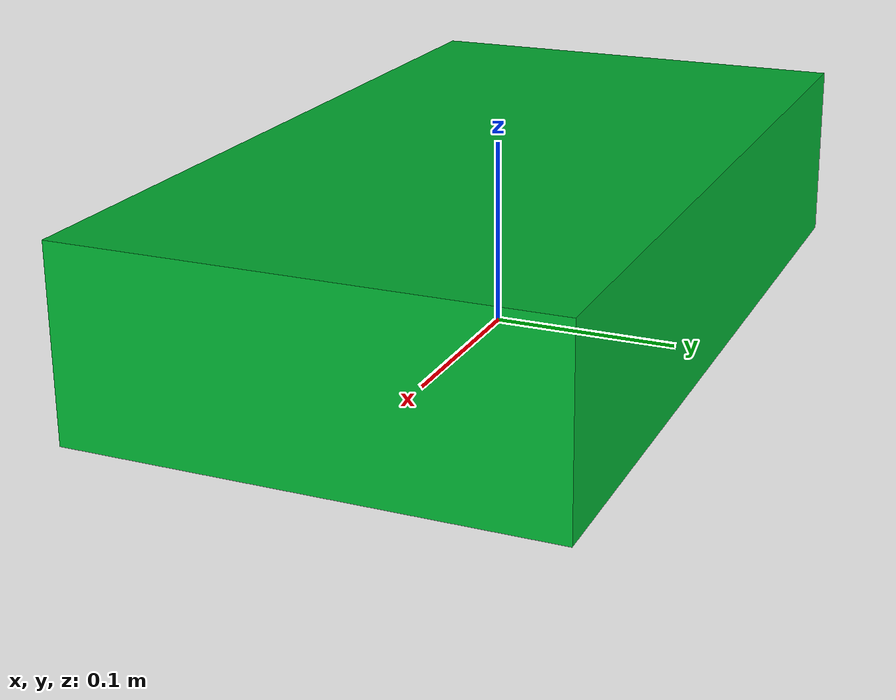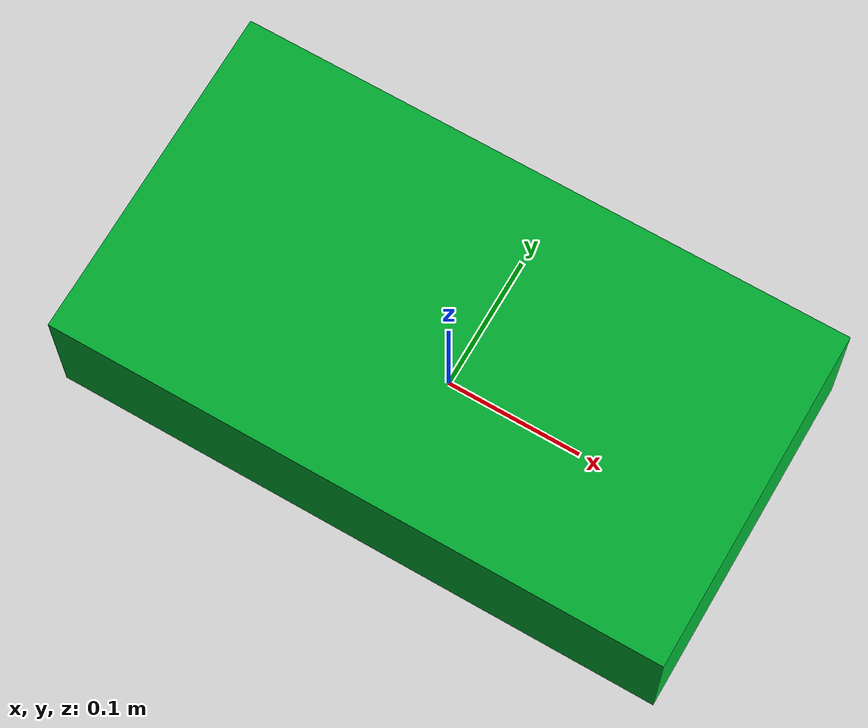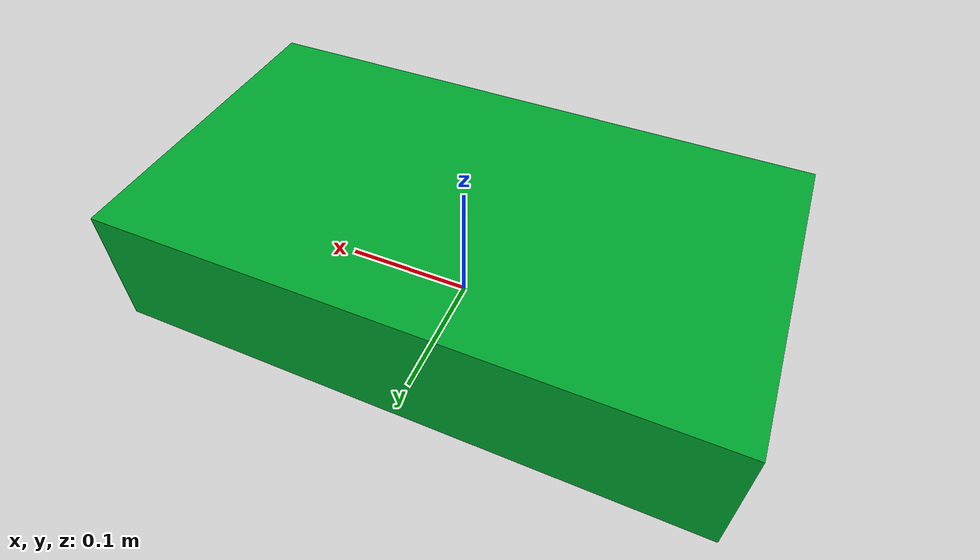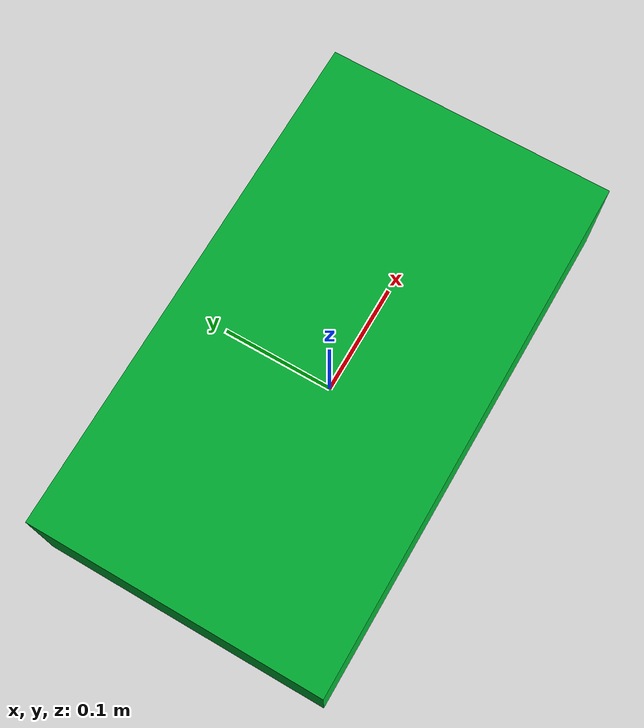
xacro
<?xml version="1.0"?>
<robot xmlns:xacro="http://www.ros.org/wiki/xacro" name="f1tenth_cone_nav">
  <link name="base_link">
    <visual>
      <origin xyz="0 0 0.05" rpy="0 0 0"/>
      <geometry>
        <box size="0.45 0.25 0.10"/>
      </geometry>
      <material name="green">
        <color rgba="0.0 0.7 0.2 1.0"/>
      </material>
    </visual>
  </link>

  <link name="zed2i_left_camera_frame"/>
  <link name="zed2i_left_camera_optical_frame"/>
  <link name="zed2i_right_camera_optical_frame"/>

  <joint name="base_to_zed_left" type="fixed">
    <parent link="base_link"/>
    <child link="zed2i_left_camera_frame"/>
    <origin xyz="0.20 0.0 0.20" rpy="0 0 0"/>
  </joint>

  <!-- ROS optical convention: +Z forward, +X right, +Y down. -->
  <joint name="zed_left_to_optical" type="fixed">
    <parent link="zed2i_left_camera_frame"/>
    <child link="zed2i_left_camera_optical_frame"/>
    <origin xyz="0 0 0" rpy="-1.57079632679 0 -1.57079632679"/>
  </joint>

  <!-- ZED 2i nominal 0.12 m stereo baseline; optical +X points right. -->
  <joint name="zed_left_optical_to_right_optical" type="fixed">
    <parent link="zed2i_left_camera_optical_frame"/>
    <child link="zed2i_right_camera_optical_frame"/>
    <origin xyz="0.12 0 0" rpy="0 0 0"/>
  </joint>
</robot>
